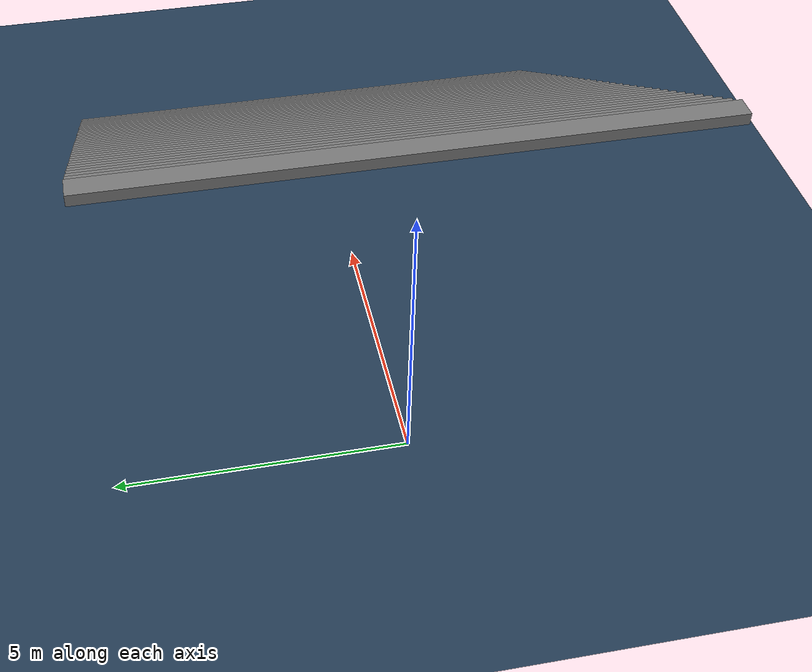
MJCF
<mujoco model="stairs_down_6">
  <!-- Terrain Type: stairs_down, Level: 6, Stairs step height: 0.1900 -->
  <statistic center="0 0 0.1" extent="0.8" />
  <visual>
    <headlight diffuse="0.6 0.6 0.6" ambient="0.3 0.3 0.3" specular="0 0 0" />
    <rgba haze="0.15 0.25 0.35 1" />
    <global azimuth="-130" elevation="-20" />
  </visual>
  <asset>
    <texture type="skybox" builtin="gradient" rgb1="0.3 0.5 0.7" rgb2="0 0 0" width="512" height="3072" />
    <texture type="2d" name="groundplane" builtin="checker" mark="edge" rgb1="0.2 0.3 0.4" rgb2="0.1 0.2 0.3" markrgb="0.8 0.8 0.8" width="300" height="300" />
    <material name="groundplane" texture="groundplane" texuniform="true" texrepeat="5 5" reflectance="0.0" />
  </asset>
  <worldbody>
    <light pos="0 0 1.5" dir="0 0 -1" directional="true" />
    <geom name="floor" size="0 0 0.05" type="plane" material="groundplane" />
    <geom pos="0.155 0.0 6.175" type="box" size="0.186 5.0 0.095" quat="1.0 0.0 0.0 0.0" />
    <geom pos="0.46499999999999997 0.0 5.984999999999999" type="box" size="0.186 5.0 0.095" quat="1.0 0.0 0.0 0.0" />
    <geom pos="0.7749999999999999 0.0 5.794999999999999" type="box" size="0.186 5.0 0.095" quat="1.0 0.0 0.0 0.0" />
    <geom pos="1.085 0.0 5.604999999999999" type="box" size="0.186 5.0 0.095" quat="1.0 0.0 0.0 0.0" />
    <geom pos="1.395 0.0 5.414999999999998" type="box" size="0.186 5.0 0.095" quat="1.0 0.0 0.0 0.0" />
    <geom pos="1.705 0.0 5.224999999999998" type="box" size="0.186 5.0 0.095" quat="1.0 0.0 0.0 0.0" />
    <geom pos="2.015 0.0 5.0349999999999975" type="box" size="0.186 5.0 0.095" quat="1.0 0.0 0.0 0.0" />
    <geom pos="2.325 0.0 4.844999999999997" type="box" size="0.186 5.0 0.095" quat="1.0 0.0 0.0 0.0" />
    <geom pos="2.6350000000000002 0.0 4.654999999999997" type="box" size="0.186 5.0 0.095" quat="1.0 0.0 0.0 0.0" />
    <geom pos="2.9450000000000003 0.0 4.464999999999996" type="box" size="0.186 5.0 0.095" quat="1.0 0.0 0.0 0.0" />
    <geom pos="3.2550000000000003 0.0 4.274999999999996" type="box" size="0.186 5.0 0.095" quat="1.0 0.0 0.0 0.0" />
    <geom pos="3.5650000000000004 0.0 4.0849999999999955" type="box" size="0.186 5.0 0.095" quat="1.0 0.0 0.0 0.0" />
    <geom pos="3.8750000000000004 0.0 3.8949999999999956" type="box" size="0.186 5.0 0.095" quat="1.0 0.0 0.0 0.0" />
    <geom pos="4.1850000000000005 0.0 3.7049999999999956" type="box" size="0.186 5.0 0.095" quat="1.0 0.0 0.0 0.0" />
    <geom pos="4.495 0.0 3.5149999999999957" type="box" size="0.186 5.0 0.095" quat="1.0 0.0 0.0 0.0" />
    <geom pos="4.805 0.0 3.3249999999999957" type="box" size="0.186 5.0 0.095" quat="1.0 0.0 0.0 0.0" />
    <geom pos="5.114999999999999 0.0 3.134999999999996" type="box" size="0.186 5.0 0.095" quat="1.0 0.0 0.0 0.0" />
    <geom pos="5.424999999999999 0.0 2.944999999999996" type="box" size="0.186 5.0 0.095" quat="1.0 0.0 0.0 0.0" />
    <geom pos="5.7349999999999985 0.0 2.754999999999996" type="box" size="0.186 5.0 0.095" quat="1.0 0.0 0.0 0.0" />
    <geom pos="6.044999999999998 0.0 2.564999999999996" type="box" size="0.186 5.0 0.095" quat="1.0 0.0 0.0 0.0" />
    <geom pos="6.354999999999998 0.0 2.374999999999996" type="box" size="0.186 5.0 0.095" quat="1.0 0.0 0.0 0.0" />
    <geom pos="6.664999999999997 0.0 2.184999999999996" type="box" size="0.186 5.0 0.095" quat="1.0 0.0 0.0 0.0" />
    <geom pos="6.974999999999997 0.0 1.994999999999996" type="box" size="0.186 5.0 0.095" quat="1.0 0.0 0.0 0.0" />
    <geom pos="7.284999999999997 0.0 1.8049999999999962" type="box" size="0.186 5.0 0.095" quat="1.0 0.0 0.0 0.0" />
    <geom pos="7.594999999999996 0.0 1.6149999999999962" type="box" size="0.186 5.0 0.095" quat="1.0 0.0 0.0 0.0" />
    <geom pos="7.904999999999996 0.0 1.4249999999999963" type="box" size="0.186 5.0 0.095" quat="1.0 0.0 0.0 0.0" />
    <geom pos="8.214999999999996 0.0 1.2349999999999963" type="box" size="0.186 5.0 0.095" quat="1.0 0.0 0.0 0.0" />
    <geom pos="8.524999999999997 0.0 1.0449999999999964" type="box" size="0.186 5.0 0.095" quat="1.0 0.0 0.0 0.0" />
    <geom pos="8.834999999999997 0.0 0.8549999999999964" type="box" size="0.186 5.0 0.095" quat="1.0 0.0 0.0 0.0" />
    <geom pos="9.144999999999998 0.0 0.6649999999999965" type="box" size="0.186 5.0 0.095" quat="1.0 0.0 0.0 0.0" />
    <geom pos="9.454999999999998 0.0 0.4749999999999965" type="box" size="0.186 5.0 0.095" quat="1.0 0.0 0.0 0.0" />
    <geom pos="9.764999999999999 0.0 0.2849999999999965" type="box" size="0.186 5.0 0.095" quat="1.0 0.0 0.0 0.0" />
    <geom pos="10.075 0.0 0.09499999999999648" type="box" size="0.186 5.0 0.095" quat="1.0 0.0 0.0 0.0" />
  </worldbody>
</mujoco>
